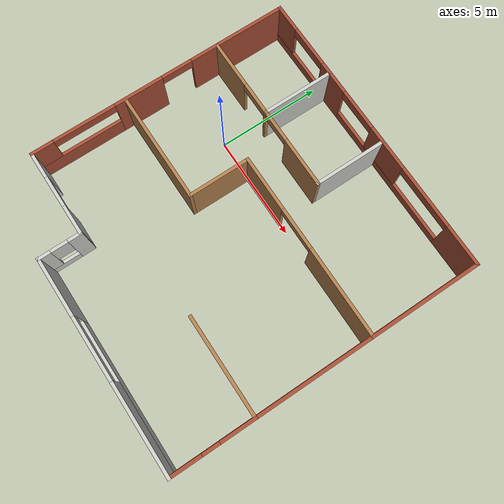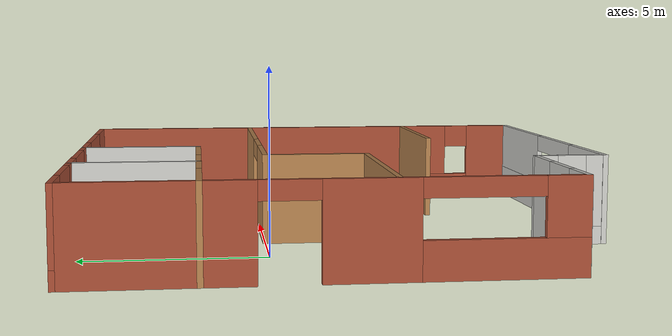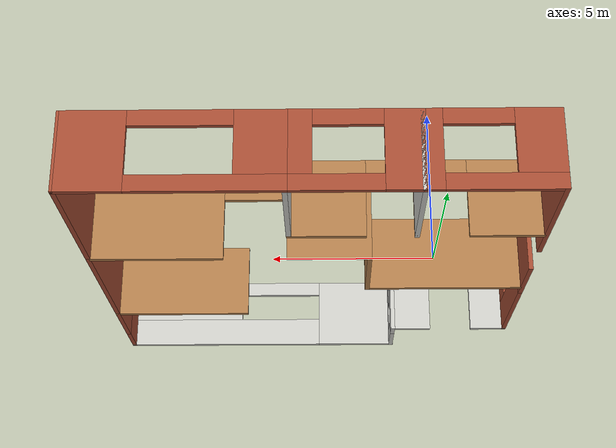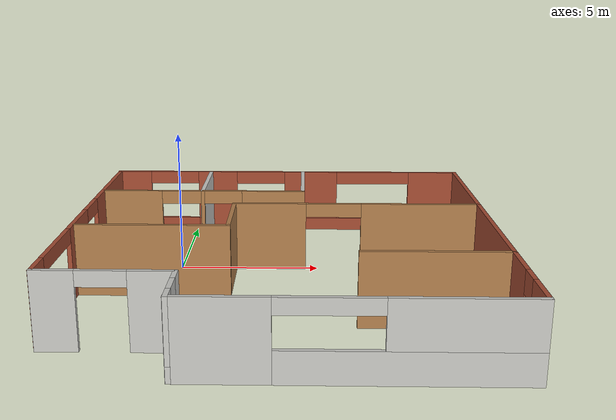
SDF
<?xml version='1.0'?>
<sdf version='1.6'>
  <model name='mybuilding'>
    <pose frame=''>3.78931 -2.0956 0 0 -0 0</pose>
    <link name='Wall_100'>
      <pose frame=''>-4.97405 -5.32475 0 0 -0 0</pose>
      <visual name='Wall_100_Visual_0'>
        <pose frame=''>-1.47284 0 1.25 0 -0 0</pose>
        <geometry>
          <box>
            <size>1.30431 0.15 2.5</size>
          </box>
        </geometry>
        <material>
          <script>
            <uri>file://media/materials/scripts/gazebo.material</uri>
            <name>Gazebo/CeilingTiled</name>
          </script>
          <ambient>0.435294 0.796078 0.67451 1</ambient>
        </material>
      </visual>
      <collision name='Wall_100_Collision_0'>
        <geometry>
          <box>
            <size>1.30431 0.15 2.5</size>
          </box>
        </geometry>
        <pose frame=''>-1.47284 0 1.25 0 -0 0</pose>
      </collision>
      <visual name='Wall_100_Visual_1'>
        <pose frame=''>1.40216 0 1.25 0 -0 0</pose>
        <geometry>
          <box>
            <size>1.44569 0.15 2.5</size>
          </box>
        </geometry>
        <material>
          <script>
            <uri>file://media/materials/scripts/gazebo.material</uri>
            <name>Gazebo/CeilingTiled</name>
          </script>
          <ambient>0.435294 0.796078 0.67451 1</ambient>
        </material>
      </visual>
      <collision name='Wall_100_Collision_1'>
        <geometry>
          <box>
            <size>1.44569 0.15 2.5</size>
          </box>
        </geometry>
        <pose frame=''>1.40216 0 1.25 0 -0 0</pose>
      </collision>
      <visual name='Wall_100_Visual_2'>
        <pose frame=''>-0.07069 0 2.25 0 -0 0</pose>
        <geometry>
          <box>
            <size>1.5 0.15 0.5</size>
          </box>
        </geometry>
        <material>
          <script>
            <uri>file://media/materials/scripts/gazebo.material</uri>
            <name>Gazebo/CeilingTiled</name>
          </script>
          <ambient>0.435294 0.796078 0.67451 1</ambient>
        </material>
      </visual>
      <collision name='Wall_100_Collision_2'>
        <geometry>
          <box>
            <size>1.5 0.15 0.5</size>
          </box>
        </geometry>
        <pose frame=''>-0.07069 0 2.25 0 -0 0</pose>
      </collision>
    </link>
    <link name='Wall_102'>
      <pose frame=''>-2.91535 -6.30192 0 0 0 -1.5708</pose>
      <visual name='Wall_102_Visual_0'>
        <pose frame=''>-0.715877 0 1.25 0 -0 0</pose>
        <geometry>
          <box>
            <size>0.672904 0.15 2.5</size>
          </box>
        </geometry>
        <material>
          <script>
            <uri>file://media/materials/scripts/gazebo.material</uri>
            <name>Gazebo/CeilingTiled</name>
          </script>
          <ambient>1 0.764706 0.305882 1</ambient>
        </material>
      </visual>
      <collision name='Wall_102_Collision_0'>
        <geometry>
          <box>
            <size>0.672904 0.15 2.5</size>
          </box>
        </geometry>
        <pose frame=''>-0.715877 0 1.25 0 -0 0</pose>
      </collision>
      <visual name='Wall_102_Visual_1'>
        <pose frame=''>0.336452 0 0.25 0 -0 0</pose>
        <geometry>
          <box>
            <size>1.43175 0.15 0.5</size>
          </box>
        </geometry>
        <material>
          <script>
            <uri>file://media/materials/scripts/gazebo.material</uri>
            <name>Gazebo/CeilingTiled</name>
          </script>
          <ambient>1 0.764706 0.305882 1</ambient>
        </material>
      </visual>
      <collision name='Wall_102_Collision_1'>
        <geometry>
          <box>
            <size>1.43175 0.15 0.5</size>
          </box>
        </geometry>
        <pose frame=''>0.336452 0 0.25 0 -0 0</pose>
      </collision>
      <visual name='Wall_102_Visual_2'>
        <pose frame=''>0.736452 0 1.5 0 -0 0</pose>
        <geometry>
          <box>
            <size>0.631753 0.15 2</size>
          </box>
        </geometry>
        <material>
          <script>
            <uri>file://media/materials/scripts/gazebo.material</uri>
            <name>Gazebo/CeilingTiled</name>
          </script>
          <ambient>1 0.764706 0.305882 1</ambient>
        </material>
      </visual>
      <collision name='Wall_102_Collision_2'>
        <geometry>
          <box>
            <size>0.631753 0.15 2</size>
          </box>
        </geometry>
        <pose frame=''>0.736452 0 1.5 0 -0 0</pose>
      </collision>
      <visual name='Wall_102_Visual_3'>
        <pose frame=''>0.020576 0 1.9 0 -0 0</pose>
        <geometry>
          <box>
            <size>0.8 0.15 1.2</size>
          </box>
        </geometry>
        <material>
          <script>
            <uri>file://media/materials/scripts/gazebo.material</uri>
            <name>Gazebo/CeilingTiled</name>
          </script>
          <ambient>1 0.764706 0.305882 1</ambient>
        </material>
      </visual>
      <collision name='Wall_102_Collision_3'>
        <geometry>
          <box>
            <size>0.8 0.15 1.2</size>
          </box>
        </geometry>
        <pose frame=''>0.020576 0 1.9 0 -0 0</pose>
      </collision>
    </link>
    <link name='Wall_104'>
      <pose frame=''>2.05282 -7.27925 0 0 0 -3.1e-05</pose>
      <visual name='Wall_104_Visual_0'>
        <pose frame=''>-3.62649 0 1.25 0 -0 0</pose>
        <geometry>
          <box>
            <size>2.85075 0.15 2.5</size>
          </box>
        </geometry>
        <material>
          <script>
            <uri>file://media/materials/scripts/gazebo.material</uri>
            <name>Gazebo/CeilingTiled</name>
          </script>
          <ambient>0.435294 0.796078 0.67451 1</ambient>
        </material>
      </visual>
      <collision name='Wall_104_Collision_0'>
        <geometry>
          <box>
            <size>2.85075 0.15 2.5</size>
          </box>
        </geometry>
        <pose frame=''>-3.62649 0 1.25 0 -0 0</pose>
      </collision>
      <visual name='Wall_104_Visual_1'>
        <pose frame=''>1.42538 0 0.5 0 -0 0</pose>
        <geometry>
          <box>
            <size>7.25299 0.15 1</size>
          </box>
        </geometry>
        <material>
          <script>
            <uri>file://media/materials/scripts/gazebo.material</uri>
            <name>Gazebo/CeilingTiled</name>
          </script>
          <ambient>0.435294 0.796078 0.67451 1</ambient>
        </material>
      </visual>
      <collision name='Wall_104_Collision_1'>
        <geometry>
          <box>
            <size>7.25299 0.15 1</size>
          </box>
        </geometry>
        <pose frame=''>1.42538 0 0.5 0 -0 0</pose>
      </collision>
      <visual name='Wall_104_Visual_2'>
        <pose frame=''>2.92537 0 1.75 0 -0 0</pose>
        <geometry>
          <box>
            <size>4.25299 0.15 1.5</size>
          </box>
        </geometry>
        <material>
          <script>
            <uri>file://media/materials/scripts/gazebo.material</uri>
            <name>Gazebo/CeilingTiled</name>
          </script>
          <ambient>0.435294 0.796078 0.67451 1</ambient>
        </material>
      </visual>
      <collision name='Wall_104_Collision_2'>
        <geometry>
          <box>
            <size>4.25299 0.15 1.5</size>
          </box>
        </geometry>
        <pose frame=''>2.92537 0 1.75 0 -0 0</pose>
      </collision>
      <visual name='Wall_104_Visual_3'>
        <pose frame=''>-0.70112 0 2.25 0 -0 0</pose>
        <geometry>
          <box>
            <size>3 0.15 0.5</size>
          </box>
        </geometry>
        <material>
          <script>
            <uri>file://media/materials/scripts/gazebo.material</uri>
            <name>Gazebo/CeilingTiled</name>
          </script>
          <ambient>0.435294 0.796078 0.67451 1</ambient>
        </material>
      </visual>
      <collision name='Wall_104_Collision_3'>
        <geometry>
          <box>
            <size>3 0.15 0.5</size>
          </box>
        </geometry>
        <pose frame=''>-0.70112 0 2.25 0 -0 0</pose>
      </collision>
    </link>
    <link name='Wall_106'>
      <pose frame=''>7.02969 -5.3499 0 0 -0 1.5708</pose>
      <visual name='Wall_106_Visual_0'>
        <pose frame=''>-1.23742 0 1.25 0 -0 0</pose>
        <geometry>
          <box>
            <size>1.53383 0.15 2.5</size>
          </box>
        </geometry>
        <material>
          <script>
            <uri>file://media/materials/scripts/gazebo.material</uri>
            <name>Gazebo/Bricks</name>
          </script>
          <ambient>1 1 1 1</ambient>
        </material>
      </visual>
      <collision name='Wall_106_Collision_0'>
        <geometry>
          <box>
            <size>1.53383 0.15 2.5</size>
          </box>
        </geometry>
        <pose frame=''>-1.23742 0 1.25 0 -0 0</pose>
      </collision>
      <visual name='Wall_106_Visual_1'>
        <pose frame=''>0.766915 0 0.375 0 -0 0</pose>
        <geometry>
          <box>
            <size>2.47484 0.15 0.75</size>
          </box>
        </geometry>
        <material>
          <script>
            <uri>file://media/materials/scripts/gazebo.material</uri>
            <name>Gazebo/Bricks</name>
          </script>
          <ambient>1 1 1 1</ambient>
        </material>
      </visual>
      <collision name='Wall_106_Collision_1'>
        <geometry>
          <box>
            <size>2.47484 0.15 0.75</size>
          </box>
        </geometry>
        <pose frame=''>0.766915 0 0.375 0 -0 0</pose>
      </collision>
      <visual name='Wall_106_Visual_2'>
        <pose frame=''>1.16691 0 1.625 0 -0 0</pose>
        <geometry>
          <box>
            <size>1.67484 0.15 1.75</size>
          </box>
        </geometry>
        <material>
          <script>
            <uri>file://media/materials/scripts/gazebo.material</uri>
            <name>Gazebo/Bricks</name>
          </script>
          <ambient>1 1 1 1</ambient>
        </material>
      </visual>
      <collision name='Wall_106_Collision_2'>
        <geometry>
          <box>
            <size>1.67484 0.15 1.75</size>
          </box>
        </geometry>
        <pose frame=''>1.16691 0 1.625 0 -0 0</pose>
      </collision>
      <visual name='Wall_106_Visual_3'>
        <pose frame=''>-0.070504 0 2.125 0 -0 0</pose>
        <geometry>
          <box>
            <size>0.8 0.15 0.75</size>
          </box>
        </geometry>
        <material>
          <script>
            <uri>file://media/materials/scripts/gazebo.material</uri>
            <name>Gazebo/Bricks</name>
          </script>
          <ambient>1 1 1 1</ambient>
        </material>
      </visual>
      <collision name='Wall_106_Collision_3'>
        <geometry>
          <box>
            <size>0.8 0.15 0.75</size>
          </box>
        </geometry>
        <pose frame=''>-0.070504 0 2.125 0 -0 0</pose>
      </collision>
    </link>
    <link name='Wall_108'>
      <collision name='Wall_108_Collision'>
        <geometry>
          <box>
            <size>4.75 0.15 2.5</size>
          </box>
        </geometry>
        <pose frame=''>0 0 1.25 0 -0 0</pose>
      </collision>
      <visual name='Wall_108_Visual'>
        <pose frame=''>0 0 1.25 0 -0 0</pose>
        <geometry>
          <box>
            <size>4.75 0.15 2.5</size>
          </box>
        </geometry>
        <material>
          <script>
            <uri>file://media/materials/scripts/gazebo.material</uri>
            <name>Gazebo/Wood</name>
          </script>
          <ambient>1 1 0.498039 1</ambient>
        </material>
      </visual>
      <pose frame=''>4.72945 -3.42056 0 0 0 -3.14152</pose>
    </link>
    <link name='Wall_110'>
      <collision name='Wall_110_Collision'>
        <geometry>
          <box>
            <size>5.666 0.15 2.5</size>
          </box>
        </geometry>
        <pose frame=''>0 0 1.25 0 -0 0</pose>
      </collision>
      <visual name='Wall_110_Visual'>
        <pose frame=''>0 0 1.25 0 -0 0</pose>
        <geometry>
          <box>
            <size>5.666 0.15 2.5</size>
          </box>
        </geometry>
        <material>
          <script>
            <uri>file://media/materials/scripts/gazebo.material</uri>
            <name>Gazebo/Bricks</name>
          </script>
          <ambient>1 1 1 1</ambient>
        </material>
      </visual>
      <pose frame=''>7.02969 -0.662398 0 0 -0 1.5708</pose>
    </link>
    <link name='Wall_112'>
      <pose frame=''>2.60469 2.0956 0 0 -0 3.14159</pose>
      <visual name='Wall_112_Visual_0'>
        <pose frame=''>-2.34058 0 1.25 0 -0 0</pose>
        <geometry>
          <box>
            <size>4.31883 0.15 2.5</size>
          </box>
        </geometry>
        <material>
          <script>
            <uri>file://media/materials/scripts/gazebo.material</uri>
            <name>Gazebo/Wood</name>
          </script>
          <ambient>1 1 0.498039 1</ambient>
        </material>
      </visual>
      <collision name='Wall_112_Collision_0'>
        <geometry>
          <box>
            <size>4.31883 0.15 2.5</size>
          </box>
        </geometry>
        <pose frame=''>-2.34058 0 1.25 0 -0 0</pose>
      </collision>
      <visual name='Wall_112_Visual_1'>
        <pose frame=''>3.15942 0 1.25 0 -0 0</pose>
        <geometry>
          <box>
            <size>2.68117 0.15 2.5</size>
          </box>
        </geometry>
        <material>
          <script>
            <uri>file://media/materials/scripts/gazebo.material</uri>
            <name>Gazebo/Wood</name>
          </script>
          <ambient>1 1 0.498039 1</ambient>
        </material>
      </visual>
      <collision name='Wall_112_Collision_1'>
        <geometry>
          <box>
            <size>2.68117 0.15 2.5</size>
          </box>
        </geometry>
        <pose frame=''>3.15942 0 1.25 0 -0 0</pose>
      </collision>
      <visual name='Wall_112_Visual_2'>
        <pose frame=''>0.81883 0 2.25 0 -0 0</pose>
        <geometry>
          <box>
            <size>2 0.15 0.5</size>
          </box>
        </geometry>
        <material>
          <script>
            <uri>file://media/materials/scripts/gazebo.material</uri>
            <name>Gazebo/Wood</name>
          </script>
          <ambient>1 1 0.498039 1</ambient>
        </material>
      </visual>
      <collision name='Wall_112_Collision_2'>
        <geometry>
          <box>
            <size>2 0.15 0.5</size>
          </box>
        </geometry>
        <pose frame=''>0.81883 0 2.25 0 -0 0</pose>
      </collision>
    </link>
    <link name='Wall_114'>
      <collision name='Wall_114_Collision'>
        <geometry>
          <box>
            <size>5.33367 0.15 2.5</size>
          </box>
        </geometry>
        <pose frame=''>0 0 1.25 0 -0 0</pose>
      </collision>
      <visual name='Wall_114_Visual'>
        <pose frame=''>0 0 1.25 0 -0 0</pose>
        <geometry>
          <box>
            <size>5.33367 0.15 2.5</size>
          </box>
        </geometry>
        <material>
          <script>
            <uri>file://media/materials/scripts/gazebo.material</uri>
            <name>Gazebo/Bricks</name>
          </script>
          <ambient>1 1 1 1</ambient>
        </material>
      </visual>
      <pose frame=''>7.02493 4.68743 0 0 -0 1.57263</pose>
    </link>
    <link name='Wall_119'>
      <pose frame=''>3.84517 7.27926 0 0 -0 3.14159</pose>
      <visual name='Wall_119_Visual_0'>
        <pose frame=''>-2.25429 0 1.25 0 -0 0</pose>
        <geometry>
          <box>
            <size>1.99143 0.15 2.5</size>
          </box>
        </geometry>
        <material>
          <script>
            <uri>file://media/materials/scripts/gazebo.material</uri>
            <name>Gazebo/Bricks</name>
          </script>
          <ambient>1 1 1 1</ambient>
        </material>
      </visual>
      <collision name='Wall_119_Collision_0'>
        <geometry>
          <box>
            <size>1.99143 0.15 2.5</size>
          </box>
        </geometry>
        <pose frame=''>-2.25429 0 1.25 0 -0 0</pose>
      </collision>
      <visual name='Wall_119_Visual_1'>
        <pose frame=''>0.995713 0 0.25 0 -0 0</pose>
        <geometry>
          <box>
            <size>4.50857 0.15 0.5</size>
          </box>
        </geometry>
        <material>
          <script>
            <uri>file://media/materials/scripts/gazebo.material</uri>
            <name>Gazebo/Bricks</name>
          </script>
          <ambient>1 1 1 1</ambient>
        </material>
      </visual>
      <collision name='Wall_119_Collision_1'>
        <geometry>
          <box>
            <size>4.50857 0.15 0.5</size>
          </box>
        </geometry>
        <pose frame=''>0.995713 0 0.25 0 -0 0</pose>
      </collision>
      <visual name='Wall_119_Visual_2'>
        <pose frame=''>2.49571 0 1.5 0 -0 0</pose>
        <geometry>
          <box>
            <size>1.50857 0.15 2</size>
          </box>
        </geometry>
        <material>
          <script>
            <uri>file://media/materials/scripts/gazebo.material</uri>
            <name>Gazebo/Bricks</name>
          </script>
          <ambient>1 1 1 1</ambient>
        </material>
      </visual>
      <collision name='Wall_119_Collision_2'>
        <geometry>
          <box>
            <size>1.50857 0.15 2</size>
          </box>
        </geometry>
        <pose frame=''>2.49571 0 1.5 0 -0 0</pose>
      </collision>
      <visual name='Wall_119_Visual_3'>
        <pose frame=''>0.241426 0 2.25 0 -0 0</pose>
        <geometry>
          <box>
            <size>3 0.15 0.5</size>
          </box>
        </geometry>
        <material>
          <script>
            <uri>file://media/materials/scripts/gazebo.material</uri>
            <name>Gazebo/Bricks</name>
          </script>
          <ambient>1 1 1 1</ambient>
        </material>
      </visual>
      <collision name='Wall_119_Collision_3'>
        <geometry>
          <box>
            <size>3 0.15 0.5</size>
          </box>
        </geometry>
        <pose frame=''>0.241426 0 2.25 0 -0 0</pose>
      </collision>
    </link>
    <link name='Wall_121'>
      <collision name='Wall_121_Collision'>
        <geometry>
          <box>
            <size>3.5 0.15 2.5</size>
          </box>
        </geometry>
        <pose frame=''>0 0 1.25 0 -0 0</pose>
      </collision>
      <visual name='Wall_121_Visual'>
        <pose frame=''>0 0 1.25 0 -0 0</pose>
        <geometry>
          <box>
            <size>3.5 0.15 2.5</size>
          </box>
        </geometry>
        <material>
          <script>
            <uri>file://media/materials/scripts/gazebo.material</uri>
            <name>Gazebo/CeilingTiled</name>
          </script>
          <ambient>0.333333 0.333333 0.498039 1</ambient>
        </material>
      </visual>
      <pose frame=''>0.670175 5.60426 0 0 0 -1.5708</pose>
    </link>
    <link name='Wall_123'>
      <pose frame=''>-1.25483 3.92926 0 0 -0 3.14159</pose>
      <visual name='Wall_123_Visual_0'>
        <pose frame=''>-0.793117 0 1.25 0 -0 0</pose>
        <geometry>
          <box>
            <size>2.41377 0.15 2.5</size>
          </box>
        </geometry>
        <material>
          <script>
            <uri>file://media/materials/scripts/gazebo.material</uri>
            <name>Gazebo/Wood</name>
          </script>
          <ambient>1 1 1 1</ambient>
        </material>
      </visual>
      <collision name='Wall_123_Collision_0'>
        <geometry>
          <box>
            <size>2.41377 0.15 2.5</size>
          </box>
        </geometry>
        <pose frame=''>-0.793117 0 1.25 0 -0 0</pose>
      </collision>
      <visual name='Wall_123_Visual_1'>
        <pose frame=''>1.95688 0 1.25 0 -0 0</pose>
        <geometry>
          <box>
            <size>0.086235 0.15 2.5</size>
          </box>
        </geometry>
        <material>
          <script>
            <uri>file://media/materials/scripts/gazebo.material</uri>
            <name>Gazebo/Wood</name>
          </script>
          <ambient>1 1 1 1</ambient>
        </material>
      </visual>
      <collision name='Wall_123_Collision_1'>
        <geometry>
          <box>
            <size>0.086235 0.15 2.5</size>
          </box>
        </geometry>
        <pose frame=''>1.95688 0 1.25 0 -0 0</pose>
      </collision>
      <visual name='Wall_123_Visual_2'>
        <pose frame=''>1.16376 0 2.25 0 -0 0</pose>
        <geometry>
          <box>
            <size>1.5 0.15 0.5</size>
          </box>
        </geometry>
        <material>
          <script>
            <uri>file://media/materials/scripts/gazebo.material</uri>
            <name>Gazebo/Wood</name>
          </script>
          <ambient>1 1 1 1</ambient>
        </material>
      </visual>
      <collision name='Wall_123_Collision_2'>
        <geometry>
          <box>
            <size>1.5 0.15 0.5</size>
          </box>
        </geometry>
        <pose frame=''>1.16376 0 2.25 0 -0 0</pose>
      </collision>
    </link>
    <link name='Wall_124'>
      <collision name='Wall_124_Collision'>
        <geometry>
          <box>
            <size>3.5 0.15 2.5</size>
          </box>
        </geometry>
        <pose frame=''>0 0 1.25 0 -0 0</pose>
      </collision>
      <visual name='Wall_124_Visual'>
        <pose frame=''>0 0 1.25 0 -0 0</pose>
        <geometry>
          <box>
            <size>3.5 0.15 2.5</size>
          </box>
        </geometry>
        <material>
          <script>
            <uri>file://media/materials/scripts/gazebo.material</uri>
            <name>Gazebo/CeilingTiled</name>
          </script>
          <ambient>0.333333 0.333333 0.498039 1</ambient>
        </material>
      </visual>
      <pose frame=''>-3.17983 5.60426 0 0 -0 1.5708</pose>
    </link>
    <link name='Wall_125'>
      <pose frame=''>-1.25483 7.27926 0 0 -0 0</pose>
      <visual name='Wall_125_Visual_0'>
        <pose frame=''>-1.41847 0 1.25 0 -0 0</pose>
        <geometry>
          <box>
            <size>1.16306 0.15 2.5</size>
          </box>
        </geometry>
        <material>
          <script>
            <uri>file://media/materials/scripts/gazebo.material</uri>
            <name>Gazebo/Bricks</name>
          </script>
          <ambient>1 1 1 1</ambient>
        </material>
      </visual>
      <collision name='Wall_125_Collision_0'>
        <geometry>
          <box>
            <size>1.16306 0.15 2.5</size>
          </box>
        </geometry>
        <pose frame=''>-1.41847 0 1.25 0 -0 0</pose>
      </collision>
      <visual name='Wall_125_Visual_1'>
        <pose frame=''>0.581531 0 0.25 0 -0 0</pose>
        <geometry>
          <box>
            <size>2.83694 0.15 0.5</size>
          </box>
        </geometry>
        <material>
          <script>
            <uri>file://media/materials/scripts/gazebo.material</uri>
            <name>Gazebo/Bricks</name>
          </script>
          <ambient>1 1 1 1</ambient>
        </material>
      </visual>
      <collision name='Wall_125_Collision_1'>
        <geometry>
          <box>
            <size>2.83694 0.15 0.5</size>
          </box>
        </geometry>
        <pose frame=''>0.581531 0 0.25 0 -0 0</pose>
      </collision>
      <visual name='Wall_125_Visual_2'>
        <pose frame=''>1.58153 0 1.5 0 -0 0</pose>
        <geometry>
          <box>
            <size>0.836939 0.15 2</size>
          </box>
        </geometry>
        <material>
          <script>
            <uri>file://media/materials/scripts/gazebo.material</uri>
            <name>Gazebo/Bricks</name>
          </script>
          <ambient>1 1 1 1</ambient>
        </material>
      </visual>
      <collision name='Wall_125_Collision_2'>
        <geometry>
          <box>
            <size>0.836939 0.15 2</size>
          </box>
        </geometry>
        <pose frame=''>1.58153 0 1.5 0 -0 0</pose>
      </collision>
      <visual name='Wall_125_Visual_3'>
        <pose frame=''>0.163061 0 2.25 0 -0 0</pose>
        <geometry>
          <box>
            <size>2 0.15 0.5</size>
          </box>
        </geometry>
        <material>
          <script>
            <uri>file://media/materials/scripts/gazebo.material</uri>
            <name>Gazebo/Bricks</name>
          </script>
          <ambient>1 1 1 1</ambient>
        </material>
      </visual>
      <collision name='Wall_125_Collision_3'>
        <geometry>
          <box>
            <size>2 0.15 0.5</size>
          </box>
        </geometry>
        <pose frame=''>0.163061 0 2.25 0 -0 0</pose>
      </collision>
    </link>
    <link name='Wall_127'>
      <pose frame=''>-5.10482 7.27926 0 0 -0 3.14159</pose>
      <visual name='Wall_127_Visual_0'>
        <pose frame=''>-1.69078 0 1.25 0 -0 0</pose>
        <geometry>
          <box>
            <size>0.618444 0.15 2.5</size>
          </box>
        </geometry>
        <material>
          <script>
            <uri>file://media/materials/scripts/gazebo.material</uri>
            <name>Gazebo/Bricks</name>
          </script>
          <ambient>1 1 1 1</ambient>
        </material>
      </visual>
      <collision name='Wall_127_Collision_0'>
        <geometry>
          <box>
            <size>0.618444 0.15 2.5</size>
          </box>
        </geometry>
        <pose frame=''>-1.69078 0 1.25 0 -0 0</pose>
      </collision>
      <visual name='Wall_127_Visual_1'>
        <pose frame=''>0.309222 0 0.25 0 -0 0</pose>
        <geometry>
          <box>
            <size>3.38156 0.15 0.5</size>
          </box>
        </geometry>
        <material>
          <script>
            <uri>file://media/materials/scripts/gazebo.material</uri>
            <name>Gazebo/Bricks</name>
          </script>
          <ambient>1 1 1 1</ambient>
        </material>
      </visual>
      <collision name='Wall_127_Collision_1'>
        <geometry>
          <box>
            <size>3.38156 0.15 0.5</size>
          </box>
        </geometry>
        <pose frame=''>0.309222 0 0.25 0 -0 0</pose>
      </collision>
      <visual name='Wall_127_Visual_2'>
        <pose frame=''>1.30922 0 1.5 0 -0 0</pose>
        <geometry>
          <box>
            <size>1.38156 0.15 2</size>
          </box>
        </geometry>
        <material>
          <script>
            <uri>file://media/materials/scripts/gazebo.material</uri>
            <name>Gazebo/Bricks</name>
          </script>
          <ambient>1 1 1 1</ambient>
        </material>
      </visual>
      <collision name='Wall_127_Collision_2'>
        <geometry>
          <box>
            <size>1.38156 0.15 2</size>
          </box>
        </geometry>
        <pose frame=''>1.30922 0 1.5 0 -0 0</pose>
      </collision>
      <visual name='Wall_127_Visual_3'>
        <pose frame=''>-0.381556 0 2.25 0 -0 0</pose>
        <geometry>
          <box>
            <size>2 0.15 0.5</size>
          </box>
        </geometry>
        <material>
          <script>
            <uri>file://media/materials/scripts/gazebo.material</uri>
            <name>Gazebo/Bricks</name>
          </script>
          <ambient>1 1 1 1</ambient>
        </material>
      </visual>
      <collision name='Wall_127_Collision_3'>
        <geometry>
          <box>
            <size>2 0.15 0.5</size>
          </box>
        </geometry>
        <pose frame=''>-0.381556 0 2.25 0 -0 0</pose>
      </collision>
    </link>
    <link name='Wall_128'>
      <pose frame=''>-7.02982 0.979263 0 0 0 -1.5708</pose>
      <visual name='Wall_128_Visual_0'>
        <pose frame=''>-3.99417 0 1.25 0 -0 0</pose>
        <geometry>
          <box>
            <size>4.76166 0.15 2.5</size>
          </box>
        </geometry>
        <material>
          <script>
            <uri>file://media/materials/scripts/gazebo.material</uri>
            <name>Gazebo/Bricks</name>
          </script>
          <ambient>1 1 1 1</ambient>
        </material>
      </visual>
      <collision name='Wall_128_Collision_0'>
        <geometry>
          <box>
            <size>4.76166 0.15 2.5</size>
          </box>
        </geometry>
        <pose frame=''>-3.99417 0 1.25 0 -0 0</pose>
      </collision>
      <visual name='Wall_128_Visual_1'>
        <pose frame=''>1.07472 0 1.25 0 -0 0</pose>
        <geometry>
          <box>
            <size>2.37612 0.15 2.5</size>
          </box>
        </geometry>
        <material>
          <script>
            <uri>file://media/materials/scripts/gazebo.material</uri>
            <name>Gazebo/Bricks</name>
          </script>
          <ambient>1 1 1 1</ambient>
        </material>
      </visual>
      <collision name='Wall_128_Collision_1'>
        <geometry>
          <box>
            <size>2.37612 0.15 2.5</size>
          </box>
        </geometry>
        <pose frame=''>1.07472 0 1.25 0 -0 0</pose>
      </collision>
      <visual name='Wall_128_Visual_2'>
        <pose frame=''>4.31889 0 0.5 0 -0 0</pose>
        <geometry>
          <box>
            <size>4.11222 0.15 1</size>
          </box>
        </geometry>
        <material>
          <script>
            <uri>file://media/materials/scripts/gazebo.material</uri>
            <name>Gazebo/Bricks</name>
          </script>
          <ambient>1 1 1 1</ambient>
        </material>
      </visual>
      <collision name='Wall_128_Collision_2'>
        <geometry>
          <box>
            <size>4.11222 0.15 1</size>
          </box>
        </geometry>
        <pose frame=''>4.31889 0 0.5 0 -0 0</pose>
      </collision>
      <visual name='Wall_128_Visual_3'>
        <pose frame=''>5.81889 0 1.75 0 -0 0</pose>
        <geometry>
          <box>
            <size>1.11222 0.15 1.5</size>
          </box>
        </geometry>
        <material>
          <script>
            <uri>file://media/materials/scripts/gazebo.material</uri>
            <name>Gazebo/Bricks</name>
          </script>
          <ambient>1 1 1 1</ambient>
        </material>
      </visual>
      <collision name='Wall_128_Collision_3'>
        <geometry>
          <box>
            <size>1.11222 0.15 1.5</size>
          </box>
        </geometry>
        <pose frame=''>5.81889 0 1.75 0 -0 0</pose>
      </collision>
      <visual name='Wall_128_Visual_4'>
        <pose frame=''>-0.863345 0 2.25 0 -0 0</pose>
        <geometry>
          <box>
            <size>1.5 0.15 0.5</size>
          </box>
        </geometry>
        <material>
          <script>
            <uri>file://media/materials/scripts/gazebo.material</uri>
            <name>Gazebo/Bricks</name>
          </script>
          <ambient>1 1 1 1</ambient>
        </material>
      </visual>
      <collision name='Wall_128_Collision_4'>
        <geometry>
          <box>
            <size>1.5 0.15 0.5</size>
          </box>
        </geometry>
        <pose frame=''>-0.863345 0 2.25 0 -0 0</pose>
      </collision>
      <visual name='Wall_128_Visual_5'>
        <pose frame=''>3.76278 0 2.25 0 -0 0</pose>
        <geometry>
          <box>
            <size>3 0.15 0.5</size>
          </box>
        </geometry>
        <material>
          <script>
            <uri>file://media/materials/scripts/gazebo.material</uri>
            <name>Gazebo/Bricks</name>
          </script>
          <ambient>1 1 1 1</ambient>
        </material>
      </visual>
      <collision name='Wall_128_Collision_5'>
        <geometry>
          <box>
            <size>3 0.15 0.5</size>
          </box>
        </geometry>
        <pose frame=''>3.76278 0 2.25 0 -0 0</pose>
      </collision>
    </link>
    <link name='Wall_130'>
      <pose frame=''>-5.10482 3.92926 0 0 -0 3.14159</pose>
      <visual name='Wall_130_Visual_0'>
        <pose frame=''>-1.93168 0 1.25 0 -0 0</pose>
        <geometry>
          <box>
            <size>0.136646 0.15 2.5</size>
          </box>
        </geometry>
        <material>
          <script>
            <uri>file://media/materials/scripts/gazebo.material</uri>
            <name>Gazebo/Wood</name>
          </script>
          <ambient>1 1 1 1</ambient>
        </material>
      </visual>
      <collision name='Wall_130_Collision_0'>
        <geometry>
          <box>
            <size>0.136646 0.15 2.5</size>
          </box>
        </geometry>
        <pose frame=''>-1.93168 0 1.25 0 -0 0</pose>
      </collision>
      <visual name='Wall_130_Visual_1'>
        <pose frame=''>0.818323 0 1.25 0 -0 0</pose>
        <geometry>
          <box>
            <size>2.36335 0.15 2.5</size>
          </box>
        </geometry>
        <material>
          <script>
            <uri>file://media/materials/scripts/gazebo.material</uri>
            <name>Gazebo/Wood</name>
          </script>
          <ambient>1 1 1 1</ambient>
        </material>
      </visual>
      <collision name='Wall_130_Collision_1'>
        <geometry>
          <box>
            <size>2.36335 0.15 2.5</size>
          </box>
        </geometry>
        <pose frame=''>0.818323 0 1.25 0 -0 0</pose>
      </collision>
      <visual name='Wall_130_Visual_2'>
        <pose frame=''>-1.11335 0 2.25 0 -0 0</pose>
        <geometry>
          <box>
            <size>1.5 0.15 0.5</size>
          </box>
        </geometry>
        <material>
          <script>
            <uri>file://media/materials/scripts/gazebo.material</uri>
            <name>Gazebo/Wood</name>
          </script>
          <ambient>1 1 1 1</ambient>
        </material>
      </visual>
      <collision name='Wall_130_Collision_2'>
        <geometry>
          <box>
            <size>1.5 0.15 0.5</size>
          </box>
        </geometry>
        <pose frame=''>-1.11335 0 2.25 0 -0 0</pose>
      </collision>
    </link>
    <link name='Wall_132'>
      <collision name='Wall_132_Collision'>
        <geometry>
          <box>
            <size>3 0.15 2.5</size>
          </box>
        </geometry>
        <pose frame=''>0 0 1.25 0 -0 0</pose>
      </collision>
      <visual name='Wall_132_Visual'>
        <pose frame=''>0 0 1.25 0 -0 0</pose>
        <geometry>
          <box>
            <size>3 0.15 2.5</size>
          </box>
        </geometry>
        <material>
          <script>
            <uri>file://media/materials/scripts/gazebo.material</uri>
            <name>Gazebo/Wood</name>
          </script>
          <ambient>1 1 1 1</ambient>
        </material>
      </visual>
      <pose frame=''>-1.82031 0.670602 0 0 0 -1.5708</pose>
    </link>
    <link name='Wall_133'>
      <collision name='Wall_133_Collision'>
        <geometry>
          <box>
            <size>5.25 0.15 2.5</size>
          </box>
        </geometry>
        <pose frame=''>0 0 1.25 0 -0 0</pose>
      </collision>
      <visual name='Wall_133_Visual'>
        <pose frame=''>0 0 1.25 0 -0 0</pose>
        <geometry>
          <box>
            <size>5.25 0.15 2.5</size>
          </box>
        </geometry>
        <material>
          <script>
            <uri>file://media/materials/scripts/gazebo.material</uri>
            <name>Gazebo/Wood</name>
          </script>
          <ambient>1 1 1 1</ambient>
        </material>
      </visual>
      <pose frame=''>-4.37031 -0.754398 0 0 -0 3.14159</pose>
    </link>
    <static>1</static>
  </model>
</sdf>
